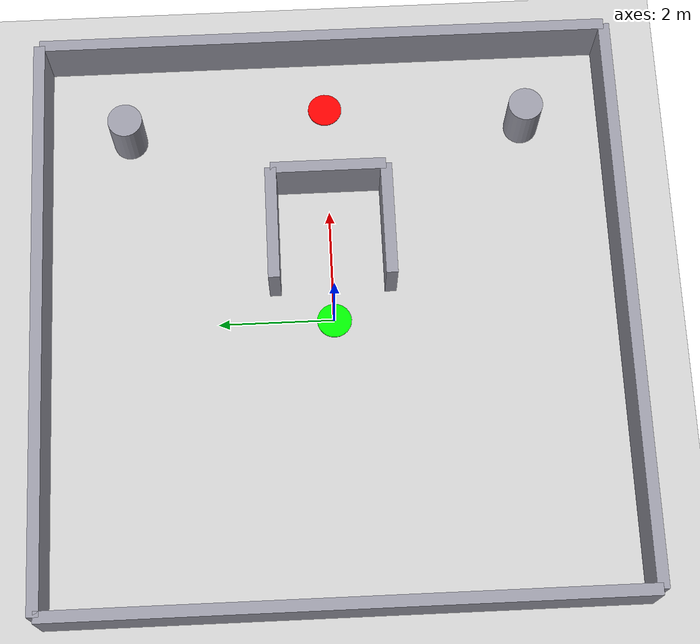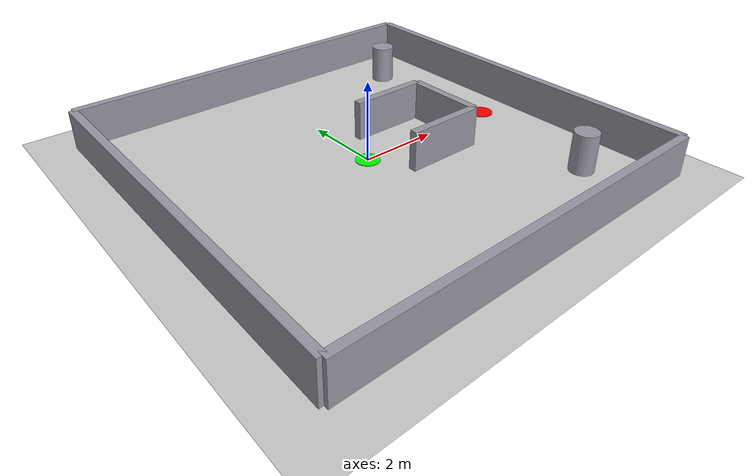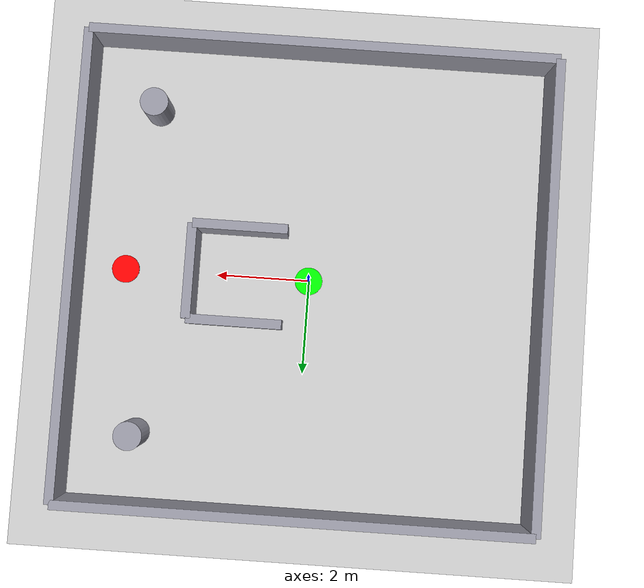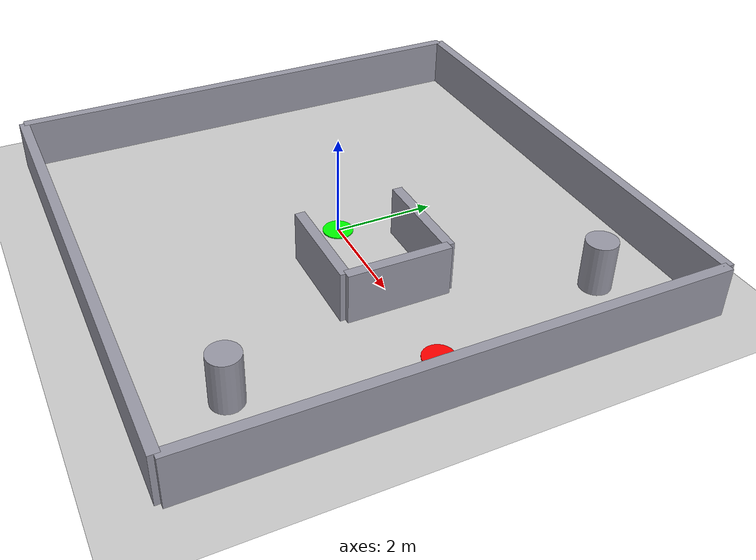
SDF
<?xml version="1.0" ?>
<sdf version="1.6">
  <world name="local_minima_world">
    <physics name="default_physics" default="0" type="ode">
      <max_step_size>0.001</max_step_size>
      <real_time_factor>1</real_time_factor>
      <real_time_update_rate>1000</real_time_update_rate>
    </physics>
    <scene>
      <ambient>0.6 0.6 0.6 1</ambient>
      <background>0.7 0.8 0.9 1</background>
      <shadows>true</shadows>
    </scene>
    <light name="sun" type="directional">
      <cast_shadows>true</cast_shadows>
      <pose>0 0 10 0 0 0</pose>
      <diffuse>0.8 0.8 0.8 1</diffuse>
      <specular>0.2 0.2 0.2 1</specular>
      <attenuation>
        <range>1000</range>
        <constant>0.9</constant>
        <linear>0.01</linear>
        <quadratic>0.001</quadratic>
      </attenuation>
      <direction>-0.4 0.2 -0.9</direction>
    </light>
    <model name="ground_plane">
      <static>true</static>
      <link name="link">
        <collision name="collision">
          <geometry>
            <plane><normal>0 0 1</normal><size>20.0 20.0</size></plane>
          </geometry>
          <surface><friction><ode><mu>100</mu><mu2>50</mu2></ode></friction></surface>
        </collision>
        <visual name="visual">
          <geometry>
            <plane><normal>0 0 1</normal><size>20.0 20.0</size></plane>
          </geometry>
          <material>
            <ambient>0.8 0.8 0.8 1</ambient>
            <diffuse>0.8 0.8 0.8 1</diffuse>
          </material>
        </visual>
      </link>
    </model>

    <model name="environment_geometry">
      <static>true</static>

      <link name="wall_north">
        <pose>5 0 0.5 0 0 0</pose>
        <collision name="col_n"><geometry><box><size>0.2 10 1</size></box></geometry></collision>
        <visual name="vis_n">
          <geometry><box><size>0.2 10 1</size></box></geometry>
          <material>
            <ambient>0.5 0.5 0.55 1</ambient>
            <diffuse>0.6 0.6 0.65 1</diffuse>
          </material>
        </visual>
      </link>
      <link name="wall_south">
        <pose>-5 0 0.5 0 0 0</pose>
        <collision name="col_s"><geometry><box><size>0.2 10 1</size></box></geometry></collision>
        <visual name="vis_s">
          <geometry><box><size>0.2 10 1</size></box></geometry>
          <material>
            <ambient>0.5 0.5 0.55 1</ambient>
            <diffuse>0.6 0.6 0.65 1</diffuse>
          </material>
        </visual>
      </link>
      <link name="wall_east">
        <pose>0 5 0.5 0 0 0</pose>
        <collision name="col_e"><geometry><box><size>10 0.2 1</size></box></geometry></collision>
        <visual name="vis_e">
          <geometry><box><size>10 0.2 1</size></box></geometry>
          <material>
            <ambient>0.5 0.5 0.55 1</ambient>
            <diffuse>0.6 0.6 0.65 1</diffuse>
          </material>
        </visual>
      </link>
      <link name="wall_west">
        <pose>0 -5 0.5 0 0 0</pose>
        <collision name="col_w"><geometry><box><size>10 0.2 1</size></box></geometry></collision>
        <visual name="vis_w">
          <geometry><box><size>10 0.2 1</size></box></geometry>
          <material>
            <ambient>0.5 0.5 0.55 1</ambient>
            <diffuse>0.6 0.6 0.65 1</diffuse>
          </material>
        </visual>
      </link>

      <link name="trap_back">
        <pose>2.5 0 0.5 0 0 0</pose>
        <collision name="col_tb"><geometry><box><size>0.2 2.0 1</size></box></geometry></collision>
        <visual name="vis_tb">
          <geometry><box><size>0.2 2.0 1</size></box></geometry>
          <material>
            <ambient>0.5 0.5 0.55 1</ambient>
            <diffuse>0.6 0.6 0.65 1</diffuse>
          </material>
        </visual>
      </link>
      <link name="trap_left">
        <pose>1.5 1.0 0.5 0 0 0</pose>
        <collision name="col_tl"><geometry><box><size>2.0 0.2 1</size></box></geometry></collision>
        <visual name="vis_tl">
          <geometry><box><size>2.0 0.2 1</size></box></geometry>
          <material>
            <ambient>0.5 0.5 0.55 1</ambient>
            <diffuse>0.6 0.6 0.65 1</diffuse>
          </material>
        </visual>
      </link>
      <link name="trap_right">
        <pose>1.5 -1.0 0.5 0 0 0</pose>
        <collision name="col_tr"><geometry><box><size>2.0 0.2 1</size></box></geometry></collision>
        <visual name="vis_tr">
          <geometry><box><size>2.0 0.2 1</size></box></geometry>
          <material>
            <ambient>0.5 0.5 0.55 1</ambient>
            <diffuse>0.6 0.6 0.65 1</diffuse>
          </material>
        </visual>
      </link>

      <link name="dummy_1">
        <pose>3.5 3.5 0.5 0 0 0</pose>
        <collision name="col_d1"><geometry><cylinder><radius>0.3</radius><length>1</length></cylinder></geometry></collision>
        <visual name="vis_d1">
          <geometry>
          <cylinder>
          <radius>0.3</radius>
          <length>1</length>
          </cylinder>
          </geometry>
           <material>
            <ambient>0.5 0.5 0.55 1</ambient>
            <diffuse>0.6 0.6 0.65 1</diffuse>
          </material>
        </visual>
      </link>
      <link name="dummy_2">
        <pose>3.5 -3.5 0.5 0 0 0</pose>
        <collision name="col_d2"><geometry><cylinder><radius>0.3</radius><length>1</length></cylinder></geometry></collision>
        <visual name="vis_d2"><geometry><cylinder><radius>0.3</radius><length>1</length></cylinder></geometry>
          <material>
            <ambient>0.5 0.5 0.55 1</ambient>
            <diffuse>0.6 0.6 0.65 1</diffuse>
          </material>
        </visual>
      </link>
    </model>
        <!-- Start Marker -->
    <model name="start_marker">
      <static>true</static>
      <pose>0 0 0.01 0 0 0</pose>
      <link name="link">
        <visual name="visual">
          <geometry><cylinder><radius>0.3</radius><length>0.02</length></cylinder></geometry>
          <material><ambient>0 1 0 1</ambient><diffuse>0 1 0 1</diffuse></material>
        </visual>
      </link>
    </model>

    <!-- Goal Marker-->
    <model name="goal_marker">
      <static>true</static>
      <pose>4 0 0.01 0 0 0</pose>
      <link name="link">
        <visual name="visual">
          <geometry><cylinder><radius>0.3</radius><length>0.02</length></cylinder></geometry>
          <material><ambient>1 0 0 1</ambient><diffuse>1 0 0 1</diffuse></material>
        </visual>
      </link>
    </model>
  </world>
</sdf>
